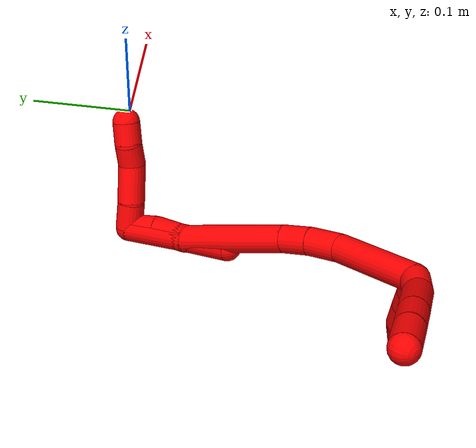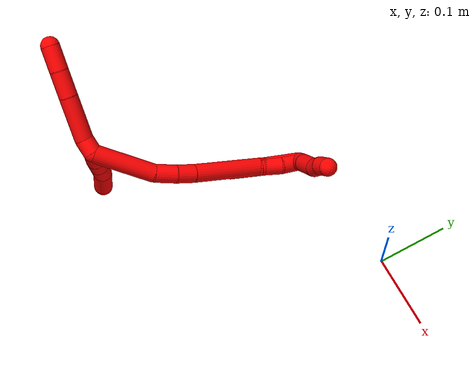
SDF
<sdf version="1.7">
 <world name="default">
  <model name="2">
   <static>0</static>
   <link name="2">
    <collision name="collision-cylinder-e_1_2_8">
     <pose>0.002273 0.00666 0.008038 -0.69193 0.214413 -0.077546</pose>
     <geometry><cylinder><radius>0.0125</radius><length>0.021366</length></cylinder></geometry>
     <surface>
      <friction><ode><mu>1.16</mu><mu2>1.16</mu2><slip1>0</slip1><slip2>0</slip2></ode></friction>
      <contact><ode><kp>1e+06</kp><kd>1</kd><max_vel>0</max_vel><min_depth>0.001</min_depth></ode></contact>
     </surface>
    </collision>
    <visual name="visual-cylinder-e_1_2_8">
     <pose>0.002273 0.00666 0.008038 -0.69193 0.214413 -0.077546</pose>
     <geometry><cylinder><radius>0.0125</radius><length>0.021366</length></cylinder></geometry>
     <material><ambient>1 0 0 1</ambient></material>
    </visual>
    <collision name="collision-cylinder-e_2_8_9">
     <pose>0.020258 0.031255 0.034352 -0.775993 0.550335 -0.229768</pose>
     <geometry><cylinder><radius>0.0125</radius><length>0.060086</length></cylinder></geometry>
     <surface>
      <friction><ode><mu>1.16</mu><mu2>1.16</mu2><slip1>0</slip1><slip2>0</slip2></ode></friction>
      <contact><ode><kp>1e+06</kp><kd>1</kd><max_vel>0</max_vel><min_depth>0.001</min_depth></ode></contact>
     </surface>
    </collision>
    <visual name="visual-cylinder-e_2_8_9">
     <pose>0.020258 0.031255 0.034352 -0.775993 0.550335 -0.229768</pose>
     <geometry><cylinder><radius>0.0125</radius><length>0.060086</length></cylinder></geometry>
     <material><ambient>1 0 0 1</ambient></material>
    </visual>
    <collision name="collision-cylinder-e_3_9_10">
     <pose>0.044089 0.060512 0.063224 -0.818457 0.482402 -0.212575</pose>
     <geometry><cylinder><radius>0.0125</radius><length>0.035006</length></cylinder></geometry>
     <surface>
      <friction><ode><mu>1.16</mu><mu2>1.16</mu2><slip1>0</slip1><slip2>0</slip2></ode></friction>
      <contact><ode><kp>1e+06</kp><kd>1</kd><max_vel>0</max_vel><min_depth>0.001</min_depth></ode></contact>
     </surface>
    </collision>
    <visual name="visual-cylinder-e_3_9_10">
     <pose>0.044089 0.060512 0.063224 -0.818457 0.482402 -0.212575</pose>
     <geometry><cylinder><radius>0.0125</radius><length>0.035006</length></cylinder></geometry>
     <material><ambient>1 0 0 1</ambient></material>
    </visual>
    <collision name="collision-cylinder-e_4_10_6">
     <pose>0.058591 0.083655 0.083858 -0.866839 0.390376 -0.182474</pose>
     <geometry><cylinder><radius>0.0125</radius><length>0.033543</length></cylinder></geometry>
     <surface>
      <friction><ode><mu>1.16</mu><mu2>1.16</mu2><slip1>0</slip1><slip2>0</slip2></ode></friction>
      <contact><ode><kp>1e+06</kp><kd>1</kd><max_vel>0</max_vel><min_depth>0.001</min_depth></ode></contact>
     </surface>
    </collision>
    <visual name="visual-cylinder-e_4_10_6">
     <pose>0.058591 0.083655 0.083858 -0.866839 0.390376 -0.182474</pose>
     <geometry><cylinder><radius>0.0125</radius><length>0.033543</length></cylinder></geometry>
     <material><ambient>1 0 0 1</ambient></material>
    </visual>
    <collision name="collision-cylinder-e_1_2_11">
     <pose>-0.009644 0.000663 -0.003988 -2.97694 -1.17387 2.89475</pose>
     <geometry><cylinder><radius>0.0125</radius><length>0.020913</length></cylinder></geometry>
     <surface>
      <friction><ode><mu>1.16</mu><mu2>1.16</mu2><slip1>0</slip1><slip2>0</slip2></ode></friction>
      <contact><ode><kp>1e+06</kp><kd>1</kd><max_vel>0</max_vel><min_depth>0.001</min_depth></ode></contact>
     </surface>
    </collision>
    <visual name="visual-cylinder-e_1_2_11">
     <pose>-0.009644 0.000663 -0.003988 -2.97694 -1.17387 2.89475</pose>
     <geometry><cylinder><radius>0.0125</radius><length>0.020913</length></cylinder></geometry>
     <material><ambient>1 0 0 1</ambient></material>
    </visual>
    <collision name="collision-cylinder-e_2_11_12">
     <pose>-0.028252 0.002859 -0.012267 -2.79837 -1.10048 2.59088</pose>
     <geometry><cylinder><radius>0.0125</radius><length>0.020113</length></cylinder></geometry>
     <surface>
      <friction><ode><mu>1.16</mu><mu2>1.16</mu2><slip1>0</slip1><slip2>0</slip2></ode></friction>
      <contact><ode><kp>1e+06</kp><kd>1</kd><max_vel>0</max_vel><min_depth>0.001</min_depth></ode></contact>
     </surface>
    </collision>
    <visual name="visual-cylinder-e_2_11_12">
     <pose>-0.028252 0.002859 -0.012267 -2.79837 -1.10048 2.59088</pose>
     <geometry><cylinder><radius>0.0125</radius><length>0.020113</length></cylinder></geometry>
     <material><ambient>1 0 0 1</ambient></material>
    </visual>
    <collision name="collision-cylinder-e_3_12_13">
     <pose>-0.048661 0.006378 -0.021672 -2.77125 -1.12382 2.56325</pose>
     <geometry><cylinder><radius>0.0125</radius><length>0.025383</length></cylinder></geometry>
     <surface>
      <friction><ode><mu>1.16</mu><mu2>1.16</mu2><slip1>0</slip1><slip2>0</slip2></ode></friction>
      <contact><ode><kp>1e+06</kp><kd>1</kd><max_vel>0</max_vel><min_depth>0.001</min_depth></ode></contact>
     </surface>
    </collision>
    <visual name="visual-cylinder-e_3_12_13">
     <pose>-0.048661 0.006378 -0.021672 -2.77125 -1.12382 2.56325</pose>
     <geometry><cylinder><radius>0.0125</radius><length>0.025383</length></cylinder></geometry>
     <material><ambient>1 0 0 1</ambient></material>
    </visual>
    <collision name="collision-cylinder-e_4_13_5">
     <pose>-0.076112 0.007304 -0.031762 2.93176 -1.26305 -2.85563</pose>
     <geometry><cylinder><radius>0.0125</radius><length>0.033591</length></cylinder></geometry>
     <surface>
      <friction><ode><mu>1.16</mu><mu2>1.16</mu2><slip1>0</slip1><slip2>0</slip2></ode></friction>
      <contact><ode><kp>1e+06</kp><kd>1</kd><max_vel>0</max_vel><min_depth>0.001</min_depth></ode></contact>
     </surface>
    </collision>
    <visual name="visual-cylinder-e_4_13_5">
     <pose>-0.076112 0.007304 -0.031762 2.93176 -1.26305 -2.85563</pose>
     <geometry><cylinder><radius>0.0125</radius><length>0.033591</length></cylinder></geometry>
     <material><ambient>1 0 0 1</ambient></material>
    </visual>
    <collision name="collision-cylinder-e_1_2_14">
     <pose>-0.00304 0.000808 -0.042838 -3.12274 -0.070828 2.62159</pose>
     <geometry><cylinder><radius>0.0125</radius><length>0.085906</length></cylinder></geometry>
     <surface>
      <friction><ode><mu>1.16</mu><mu2>1.16</mu2><slip1>0</slip1><slip2>0</slip2></ode></friction>
      <contact><ode><kp>1e+06</kp><kd>1</kd><max_vel>0</max_vel><min_depth>0.001</min_depth></ode></contact>
     </surface>
    </collision>
    <visual name="visual-cylinder-e_1_2_14">
     <pose>-0.00304 0.000808 -0.042838 -3.12274 -0.070828 2.62159</pose>
     <geometry><cylinder><radius>0.0125</radius><length>0.085906</length></cylinder></geometry>
     <material><ambient>1 0 0 1</ambient></material>
    </visual>
    <collision name="collision-cylinder-e_2_14_15">
     <pose>-0.005506 0.005488 -0.100039 -2.87823 0.038529 -0.288912</pose>
     <geometry><cylinder><radius>0.0125</radius><length>0.029775</length></cylinder></geometry>
     <surface>
      <friction><ode><mu>1.16</mu><mu2>1.16</mu2><slip1>0</slip1><slip2>0</slip2></ode></friction>
      <contact><ode><kp>1e+06</kp><kd>1</kd><max_vel>0</max_vel><min_depth>0.001</min_depth></ode></contact>
     </surface>
    </collision>
    <visual name="visual-cylinder-e_2_14_15">
     <pose>-0.005506 0.005488 -0.100039 -2.87823 0.038529 -0.288912</pose>
     <geometry><cylinder><radius>0.0125</radius><length>0.029775</length></cylinder></geometry>
     <material><ambient>1 0 0 1</ambient></material>
    </visual>
    <collision name="collision-cylinder-e_3_15_16">
     <pose>-0.005165 0.013983 -0.126376 -2.77319 -0.018125 0.097207</pose>
     <geometry><cylinder><radius>0.0125</radius><length>0.025675</length></cylinder></geometry>
     <surface>
      <friction><ode><mu>1.16</mu><mu2>1.16</mu2><slip1>0</slip1><slip2>0</slip2></ode></friction>
      <contact><ode><kp>1e+06</kp><kd>1</kd><max_vel>0</max_vel><min_depth>0.001</min_depth></ode></contact>
     </surface>
    </collision>
    <visual name="visual-cylinder-e_3_15_16">
     <pose>-0.005165 0.013983 -0.126376 -2.77319 -0.018125 0.097207</pose>
     <geometry><cylinder><radius>0.0125</radius><length>0.025675</length></cylinder></geometry>
     <material><ambient>1 0 0 1</ambient></material>
    </visual>
    <collision name="collision-cylinder-e_4_16_17">
     <pose>-0.007973 0.040501 -0.183676 -2.69157 -0.051121 0.222472</pose>
     <geometry><cylinder><radius>0.0125</radius><length>0.100806</length></cylinder></geometry>
     <surface>
      <friction><ode><mu>1.16</mu><mu2>1.16</mu2><slip1>0</slip1><slip2>0</slip2></ode></friction>
      <contact><ode><kp>1e+06</kp><kd>1</kd><max_vel>0</max_vel><min_depth>0.001</min_depth></ode></contact>
     </surface>
    </collision>
    <visual name="visual-cylinder-e_4_16_17">
     <pose>-0.007973 0.040501 -0.183676 -2.69157 -0.051121 0.222472</pose>
     <geometry><cylinder><radius>0.0125</radius><length>0.100806</length></cylinder></geometry>
     <material><ambient>1 0 0 1</ambient></material>
    </visual>
    <collision name="collision-cylinder-e_5_17_18">
     <pose>-0.007427 0.066908 -0.243184 -2.83364 0.206765 -1.17853</pose>
     <geometry><cylinder><radius>0.0125</radius><length>0.030412</length></cylinder></geometry>
     <surface>
      <friction><ode><mu>1.16</mu><mu2>1.16</mu2><slip1>0</slip1><slip2>0</slip2></ode></friction>
      <contact><ode><kp>1e+06</kp><kd>1</kd><max_vel>0</max_vel><min_depth>0.001</min_depth></ode></contact>
     </surface>
    </collision>
    <visual name="visual-cylinder-e_5_17_18">
     <pose>-0.007427 0.066908 -0.243184 -2.83364 0.206765 -1.17853</pose>
     <geometry><cylinder><radius>0.0125</radius><length>0.030412</length></cylinder></geometry>
     <material><ambient>1 0 0 1</ambient></material>
    </visual>
    <collision name="collision-cylinder-e_6_18_1">
     <pose>-0.002974 0.077959 -0.269345 -2.64186 0.097239 -0.376811</pose>
     <geometry><cylinder><radius>0.0125</radius><length>0.027426</length></cylinder></geometry>
     <surface>
      <friction><ode><mu>1.16</mu><mu2>1.16</mu2><slip1>0</slip1><slip2>0</slip2></ode></friction>
      <contact><ode><kp>1e+06</kp><kd>1</kd><max_vel>0</max_vel><min_depth>0.001</min_depth></ode></contact>
     </surface>
    </collision>
    <visual name="visual-cylinder-e_6_18_1">
     <pose>-0.002974 0.077959 -0.269345 -2.64186 0.097239 -0.376811</pose>
     <geometry><cylinder><radius>0.0125</radius><length>0.027426</length></cylinder></geometry>
     <material><ambient>1 0 0 1</ambient></material>
    </visual>
    <collision name="collision-cylinder-e_1_1_19">
     <pose>0.008562 0.078213 -0.281743 1.63738 1.01771 1.07538</pose>
     <geometry><cylinder><radius>0.0125</radius><length>0.023987</length></cylinder></geometry>
     <surface>
      <friction><ode><mu>1.16</mu><mu2>1.16</mu2><slip1>0</slip1><slip2>0</slip2></ode></friction>
      <contact><ode><kp>1e+06</kp><kd>1</kd><max_vel>0</max_vel><min_depth>0.001</min_depth></ode></contact>
     </surface>
    </collision>
    <visual name="visual-cylinder-e_1_1_19">
     <pose>0.008562 0.078213 -0.281743 1.63738 1.01771 1.07538</pose>
     <geometry><cylinder><radius>0.0125</radius><length>0.023987</length></cylinder></geometry>
     <material><ambient>1 0 0 1</ambient></material>
    </visual>
    <collision name="collision-cylinder-e_2_19_20">
     <pose>0.033263 0.062035 -0.285152 1.86429 0.951455 1.21325</pose>
     <geometry><cylinder><radius>0.0125</radius><length>0.035603</length></cylinder></geometry>
     <surface>
      <friction><ode><mu>1.16</mu><mu2>1.16</mu2><slip1>0</slip1><slip2>0</slip2></ode></friction>
      <contact><ode><kp>1e+06</kp><kd>1</kd><max_vel>0</max_vel><min_depth>0.001</min_depth></ode></contact>
     </surface>
    </collision>
    <visual name="visual-cylinder-e_2_19_20">
     <pose>0.033263 0.062035 -0.285152 1.86429 0.951455 1.21325</pose>
     <geometry><cylinder><radius>0.0125</radius><length>0.035603</length></cylinder></geometry>
     <material><ambient>1 0 0 1</ambient></material>
    </visual>
    <collision name="collision-cylinder-e_3_20_21">
     <pose>0.057315 0.049258 -0.288902 1.8286 1.26822 1.52422</pose>
     <geometry><cylinder><radius>0.0125</radius><length>0.020025</length></cylinder></geometry>
     <surface>
      <friction><ode><mu>1.16</mu><mu2>1.16</mu2><slip1>0</slip1><slip2>0</slip2></ode></friction>
      <contact><ode><kp>1e+06</kp><kd>1</kd><max_vel>0</max_vel><min_depth>0.001</min_depth></ode></contact>
     </surface>
    </collision>
    <visual name="visual-cylinder-e_3_20_21">
     <pose>0.057315 0.049258 -0.288902 1.8286 1.26822 1.52422</pose>
     <geometry><cylinder><radius>0.0125</radius><length>0.020025</length></cylinder></geometry>
     <material><ambient>1 0 0 1</ambient></material>
    </visual>
    <collision name="collision-cylinder-e_4_21_4">
     <pose>0.075672 0.04172 -0.291859 2.01168 1.04164 1.47113</pose>
     <geometry><cylinder><radius>0.0125</radius><length>0.020385</length></cylinder></geometry>
     <surface>
      <friction><ode><mu>1.16</mu><mu2>1.16</mu2><slip1>0</slip1><slip2>0</slip2></ode></friction>
      <contact><ode><kp>1e+06</kp><kd>1</kd><max_vel>0</max_vel><min_depth>0.001</min_depth></ode></contact>
     </surface>
    </collision>
    <visual name="visual-cylinder-e_4_21_4">
     <pose>0.075672 0.04172 -0.291859 2.01168 1.04164 1.47113</pose>
     <geometry><cylinder><radius>0.0125</radius><length>0.020385</length></cylinder></geometry>
     <material><ambient>1 0 0 1</ambient></material>
    </visual>
    <collision name="collision-cylinder-e_1_1_22">
     <pose>-0.005829 0.073439 -0.255867 0.40987 -0.149681 -0.031167</pose>
     <geometry><cylinder><radius>0.0125</radius><length>0.05614</length></cylinder></geometry>
     <surface>
      <friction><ode><mu>1.16</mu><mu2>1.16</mu2><slip1>0</slip1><slip2>0</slip2></ode></friction>
      <contact><ode><kp>1e+06</kp><kd>1</kd><max_vel>0</max_vel><min_depth>0.001</min_depth></ode></contact>
     </surface>
    </collision>
    <visual name="visual-cylinder-e_1_1_22">
     <pose>-0.005829 0.073439 -0.255867 0.40987 -0.149681 -0.031167</pose>
     <geometry><cylinder><radius>0.0125</radius><length>0.05614</length></cylinder></geometry>
     <material><ambient>1 0 0 1</ambient></material>
    </visual>
    <collision name="collision-cylinder-e_2_22_3">
     <pose>-0.013241 0.054384 -0.210245 0.377421 -0.147639 -0.028246</pose>
     <geometry><cylinder><radius>0.0125</radius><length>0.04386</length></cylinder></geometry>
     <surface>
      <friction><ode><mu>1.16</mu><mu2>1.16</mu2><slip1>0</slip1><slip2>0</slip2></ode></friction>
      <contact><ode><kp>1e+06</kp><kd>1</kd><max_vel>0</max_vel><min_depth>0.001</min_depth></ode></contact>
     </surface>
    </collision>
    <visual name="visual-cylinder-e_2_22_3">
     <pose>-0.013241 0.054384 -0.210245 0.377421 -0.147639 -0.028246</pose>
     <geometry><cylinder><radius>0.0125</radius><length>0.04386</length></cylinder></geometry>
     <material><ambient>1 0 0 1</ambient></material>
    </visual>
    <collision name="collision-sphere-3">
     <pose>-0.016467 0.046391 -0.19008 0 -0 0</pose>
     <geometry><sphere><radius>0.0125</radius></sphere></geometry>
     <surface>
      <friction><ode><mu>1.16</mu><mu2>1.16</mu2><slip1>0</slip1><slip2>0</slip2></ode></friction>
      <contact><ode><kp>1e+06</kp><kd>1</kd><max_vel>0</max_vel><min_depth>0.001</min_depth></ode></contact>
     </surface>
    </collision>
    <visual name="visual-sphere-3">
     <pose>-0.016467 0.046391 -0.19008 0 -0 0</pose>
     <geometry><sphere><radius>0.0125</radius></sphere></geometry>
     <material><ambient>1 0 0 1</ambient></material>
    </visual>
    <collision name="collision-sphere-22">
     <pose>-0.010015 0.062378 -0.230409 0 -0 0</pose>
     <geometry><sphere><radius>0.0125</radius></sphere></geometry>
     <surface>
      <friction><ode><mu>1.16</mu><mu2>1.16</mu2><slip1>0</slip1><slip2>0</slip2></ode></friction>
      <contact><ode><kp>1e+06</kp><kd>1</kd><max_vel>0</max_vel><min_depth>0.001</min_depth></ode></contact>
     </surface>
    </collision>
    <visual name="visual-sphere-22">
     <pose>-0.010015 0.062378 -0.230409 0 -0 0</pose>
     <geometry><sphere><radius>0.0125</radius></sphere></geometry>
     <material><ambient>1 0 0 1</ambient></material>
    </visual>
    <collision name="collision-sphere-4">
     <pose>0.08447 0.037066 -0.294054 0 -0 0</pose>
     <geometry><sphere><radius>0.0125</radius></sphere></geometry>
     <surface>
      <friction><ode><mu>1.16</mu><mu2>1.16</mu2><slip1>0</slip1><slip2>0</slip2></ode></friction>
      <contact><ode><kp>1e+06</kp><kd>1</kd><max_vel>0</max_vel><min_depth>0.001</min_depth></ode></contact>
     </surface>
    </collision>
    <visual name="visual-sphere-4">
     <pose>0.08447 0.037066 -0.294054 0 -0 0</pose>
     <geometry><sphere><radius>0.0125</radius></sphere></geometry>
     <material><ambient>1 0 0 1</ambient></material>
    </visual>
    <collision name="collision-sphere-21">
     <pose>0.066873 0.046373 -0.289663 0 -0 0</pose>
     <geometry><sphere><radius>0.0125</radius></sphere></geometry>
     <surface>
      <friction><ode><mu>1.16</mu><mu2>1.16</mu2><slip1>0</slip1><slip2>0</slip2></ode></friction>
      <contact><ode><kp>1e+06</kp><kd>1</kd><max_vel>0</max_vel><min_depth>0.001</min_depth></ode></contact>
     </surface>
    </collision>
    <visual name="visual-sphere-21">
     <pose>0.066873 0.046373 -0.289663 0 -0 0</pose>
     <geometry><sphere><radius>0.0125</radius></sphere></geometry>
     <material><ambient>1 0 0 1</ambient></material>
    </visual>
    <collision name="collision-sphere-20">
     <pose>0.047758 0.052143 -0.288142 0 -0 0</pose>
     <geometry><sphere><radius>0.0125</radius></sphere></geometry>
     <surface>
      <friction><ode><mu>1.16</mu><mu2>1.16</mu2><slip1>0</slip1><slip2>0</slip2></ode></friction>
      <contact><ode><kp>1e+06</kp><kd>1</kd><max_vel>0</max_vel><min_depth>0.001</min_depth></ode></contact>
     </surface>
    </collision>
    <visual name="visual-sphere-20">
     <pose>0.047758 0.052143 -0.288142 0 -0 0</pose>
     <geometry><sphere><radius>0.0125</radius></sphere></geometry>
     <material><ambient>1 0 0 1</ambient></material>
    </visual>
    <collision name="collision-sphere-11">
     <pose>-0.019287 0.001325 -0.007975 0 -0 0</pose>
     <geometry><sphere><radius>0.0125</radius></sphere></geometry>
     <surface>
      <friction><ode><mu>1.16</mu><mu2>1.16</mu2><slip1>0</slip1><slip2>0</slip2></ode></friction>
      <contact><ode><kp>1e+06</kp><kd>1</kd><max_vel>0</max_vel><min_depth>0.001</min_depth></ode></contact>
     </surface>
    </collision>
    <visual name="visual-sphere-11">
     <pose>-0.019287 0.001325 -0.007975 0 -0 0</pose>
     <geometry><sphere><radius>0.0125</radius></sphere></geometry>
     <material><ambient>1 0 0 1</ambient></material>
    </visual>
    <collision name="collision-sphere-6">
     <pose>0.064973 0.095478 0.093896 0 -0 0</pose>
     <geometry><sphere><radius>0.0125</radius></sphere></geometry>
     <surface>
      <friction><ode><mu>1.16</mu><mu2>1.16</mu2><slip1>0</slip1><slip2>0</slip2></ode></friction>
      <contact><ode><kp>1e+06</kp><kd>1</kd><max_vel>0</max_vel><min_depth>0.001</min_depth></ode></contact>
     </surface>
    </collision>
    <visual name="visual-sphere-6">
     <pose>0.064973 0.095478 0.093896 0 -0 0</pose>
     <geometry><sphere><radius>0.0125</radius></sphere></geometry>
     <material><ambient>1 0 0 1</ambient></material>
    </visual>
    <collision name="collision-sphere-10">
     <pose>0.052209 0.071832 0.073819 0 -0 0</pose>
     <geometry><sphere><radius>0.0125</radius></sphere></geometry>
     <surface>
      <friction><ode><mu>1.16</mu><mu2>1.16</mu2><slip1>0</slip1><slip2>0</slip2></ode></friction>
      <contact><ode><kp>1e+06</kp><kd>1</kd><max_vel>0</max_vel><min_depth>0.001</min_depth></ode></contact>
     </surface>
    </collision>
    <visual name="visual-sphere-10">
     <pose>0.052209 0.071832 0.073819 0 -0 0</pose>
     <geometry><sphere><radius>0.0125</radius></sphere></geometry>
     <material><ambient>1 0 0 1</ambient></material>
    </visual>
    <collision name="collision-sphere-9">
     <pose>0.035969 0.049191 0.052628 0 -0 0</pose>
     <geometry><sphere><radius>0.0125</radius></sphere></geometry>
     <surface>
      <friction><ode><mu>1.16</mu><mu2>1.16</mu2><slip1>0</slip1><slip2>0</slip2></ode></friction>
      <contact><ode><kp>1e+06</kp><kd>1</kd><max_vel>0</max_vel><min_depth>0.001</min_depth></ode></contact>
     </surface>
    </collision>
    <visual name="visual-sphere-9">
     <pose>0.035969 0.049191 0.052628 0 -0 0</pose>
     <geometry><sphere><radius>0.0125</radius></sphere></geometry>
     <material><ambient>1 0 0 1</ambient></material>
    </visual>
    <collision name="collision-sphere-2">
     <geometry><sphere><radius>0.0125</radius></sphere></geometry>
     <surface>
      <friction><ode><mu>1.16</mu><mu2>1.16</mu2><slip1>0</slip1><slip2>0</slip2></ode></friction>
      <contact><ode><kp>1e+06</kp><kd>1</kd><max_vel>0</max_vel><min_depth>0.001</min_depth></ode></contact>
     </surface>
    </collision>
    <visual name="visual-sphere-2">
     <geometry><sphere><radius>0.0125</radius></sphere></geometry>
     <material><ambient>1 0 0 1</ambient></material>
    </visual>
    <collision name="collision-sphere-19">
     <pose>0.018768 0.071926 -0.282162 0 -0 0</pose>
     <geometry><sphere><radius>0.0125</radius></sphere></geometry>
     <surface>
      <friction><ode><mu>1.16</mu><mu2>1.16</mu2><slip1>0</slip1><slip2>0</slip2></ode></friction>
      <contact><ode><kp>1e+06</kp><kd>1</kd><max_vel>0</max_vel><min_depth>0.001</min_depth></ode></contact>
     </surface>
    </collision>
    <visual name="visual-sphere-19">
     <pose>0.018768 0.071926 -0.282162 0 -0 0</pose>
     <geometry><sphere><radius>0.0125</radius></sphere></geometry>
     <material><ambient>1 0 0 1</ambient></material>
    </visual>
    <collision name="collision-sphere-8">
     <pose>0.004546 0.01332 0.016075 0 -0 0</pose>
     <geometry><sphere><radius>0.0125</radius></sphere></geometry>
     <surface>
      <friction><ode><mu>1.16</mu><mu2>1.16</mu2><slip1>0</slip1><slip2>0</slip2></ode></friction>
      <contact><ode><kp>1e+06</kp><kd>1</kd><max_vel>0</max_vel><min_depth>0.001</min_depth></ode></contact>
     </surface>
    </collision>
    <visual name="visual-sphere-8">
     <pose>0.004546 0.01332 0.016075 0 -0 0</pose>
     <geometry><sphere><radius>0.0125</radius></sphere></geometry>
     <material><ambient>1 0 0 1</ambient></material>
    </visual>
    <collision name="collision-sphere-12">
     <pose>-0.037216 0.004392 -0.016558 0 -0 0</pose>
     <geometry><sphere><radius>0.0125</radius></sphere></geometry>
     <surface>
      <friction><ode><mu>1.16</mu><mu2>1.16</mu2><slip1>0</slip1><slip2>0</slip2></ode></friction>
      <contact><ode><kp>1e+06</kp><kd>1</kd><max_vel>0</max_vel><min_depth>0.001</min_depth></ode></contact>
     </surface>
    </collision>
    <visual name="visual-sphere-12">
     <pose>-0.037216 0.004392 -0.016558 0 -0 0</pose>
     <geometry><sphere><radius>0.0125</radius></sphere></geometry>
     <material><ambient>1 0 0 1</ambient></material>
    </visual>
    <collision name="collision-sphere-13">
     <pose>-0.060106 0.008363 -0.026786 0 -0 0</pose>
     <geometry><sphere><radius>0.0125</radius></sphere></geometry>
     <surface>
      <friction><ode><mu>1.16</mu><mu2>1.16</mu2><slip1>0</slip1><slip2>0</slip2></ode></friction>
      <contact><ode><kp>1e+06</kp><kd>1</kd><max_vel>0</max_vel><min_depth>0.001</min_depth></ode></contact>
     </surface>
    </collision>
    <visual name="visual-sphere-13">
     <pose>-0.060106 0.008363 -0.026786 0 -0 0</pose>
     <geometry><sphere><radius>0.0125</radius></sphere></geometry>
     <material><ambient>1 0 0 1</ambient></material>
    </visual>
    <collision name="collision-sphere-5">
     <pose>-0.092118 0.006244 -0.036738 0 -0 0</pose>
     <geometry><sphere><radius>0.0125</radius></sphere></geometry>
     <surface>
      <friction><ode><mu>1.16</mu><mu2>1.16</mu2><slip1>0</slip1><slip2>0</slip2></ode></friction>
      <contact><ode><kp>1e+06</kp><kd>1</kd><max_vel>0</max_vel><min_depth>0.001</min_depth></ode></contact>
     </surface>
    </collision>
    <visual name="visual-sphere-5">
     <pose>-0.092118 0.006244 -0.036738 0 -0 0</pose>
     <geometry><sphere><radius>0.0125</radius></sphere></geometry>
     <material><ambient>1 0 0 1</ambient></material>
    </visual>
    <collision name="collision-sphere-14">
     <pose>-0.006079 0.001615 -0.085675 0 -0 0</pose>
     <geometry><sphere><radius>0.0125</radius></sphere></geometry>
     <surface>
      <friction><ode><mu>1.16</mu><mu2>1.16</mu2><slip1>0</slip1><slip2>0</slip2></ode></friction>
      <contact><ode><kp>1e+06</kp><kd>1</kd><max_vel>0</max_vel><min_depth>0.001</min_depth></ode></contact>
     </surface>
    </collision>
    <visual name="visual-sphere-14">
     <pose>-0.006079 0.001615 -0.085675 0 -0 0</pose>
     <geometry><sphere><radius>0.0125</radius></sphere></geometry>
     <material><ambient>1 0 0 1</ambient></material>
    </visual>
    <collision name="collision-sphere-15">
     <pose>-0.004933 0.00936 -0.114402 0 -0 0</pose>
     <geometry><sphere><radius>0.0125</radius></sphere></geometry>
     <surface>
      <friction><ode><mu>1.16</mu><mu2>1.16</mu2><slip1>0</slip1><slip2>0</slip2></ode></friction>
      <contact><ode><kp>1e+06</kp><kd>1</kd><max_vel>0</max_vel><min_depth>0.001</min_depth></ode></contact>
     </surface>
    </collision>
    <visual name="visual-sphere-15">
     <pose>-0.004933 0.00936 -0.114402 0 -0 0</pose>
     <geometry><sphere><radius>0.0125</radius></sphere></geometry>
     <material><ambient>1 0 0 1</ambient></material>
    </visual>
    <collision name="collision-sphere-16">
     <pose>-0.005398 0.018605 -0.138351 0 -0 0</pose>
     <geometry><sphere><radius>0.0125</radius></sphere></geometry>
     <surface>
      <friction><ode><mu>1.16</mu><mu2>1.16</mu2><slip1>0</slip1><slip2>0</slip2></ode></friction>
      <contact><ode><kp>1e+06</kp><kd>1</kd><max_vel>0</max_vel><min_depth>0.001</min_depth></ode></contact>
     </surface>
    </collision>
    <visual name="visual-sphere-16">
     <pose>-0.005398 0.018605 -0.138351 0 -0 0</pose>
     <geometry><sphere><radius>0.0125</radius></sphere></geometry>
     <material><ambient>1 0 0 1</ambient></material>
    </visual>
    <collision name="collision-sphere-17">
     <pose>-0.010549 0.062398 -0.229002 0 -0 0</pose>
     <geometry><sphere><radius>0.0125</radius></sphere></geometry>
     <surface>
      <friction><ode><mu>1.16</mu><mu2>1.16</mu2><slip1>0</slip1><slip2>0</slip2></ode></friction>
      <contact><ode><kp>1e+06</kp><kd>1</kd><max_vel>0</max_vel><min_depth>0.001</min_depth></ode></contact>
     </surface>
    </collision>
    <visual name="visual-sphere-17">
     <pose>-0.010549 0.062398 -0.229002 0 -0 0</pose>
     <geometry><sphere><radius>0.0125</radius></sphere></geometry>
     <material><ambient>1 0 0 1</ambient></material>
    </visual>
    <collision name="collision-sphere-18">
     <pose>-0.004306 0.071419 -0.257366 0 -0 0</pose>
     <geometry><sphere><radius>0.0125</radius></sphere></geometry>
     <surface>
      <friction><ode><mu>1.16</mu><mu2>1.16</mu2><slip1>0</slip1><slip2>0</slip2></ode></friction>
      <contact><ode><kp>1e+06</kp><kd>1</kd><max_vel>0</max_vel><min_depth>0.001</min_depth></ode></contact>
     </surface>
    </collision>
    <visual name="visual-sphere-18">
     <pose>-0.004306 0.071419 -0.257366 0 -0 0</pose>
     <geometry><sphere><radius>0.0125</radius></sphere></geometry>
     <material><ambient>1 0 0 1</ambient></material>
    </visual>
    <collision name="collision-sphere-1">
     <pose>-0.001643 0.084499 -0.281324 0 -0 0</pose>
     <geometry><sphere><radius>0.0125</radius></sphere></geometry>
     <surface>
      <friction><ode><mu>1.16</mu><mu2>1.16</mu2><slip1>0</slip1><slip2>0</slip2></ode></friction>
      <contact><ode><kp>1e+06</kp><kd>1</kd><max_vel>0</max_vel><min_depth>0.001</min_depth></ode></contact>
     </surface>
    </collision>
    <visual name="visual-sphere-1">
     <pose>-0.001643 0.084499 -0.281324 0 -0 0</pose>
     <geometry><sphere><radius>0.0125</radius></sphere></geometry>
     <material><ambient>1 0 0 1</ambient></material>
    </visual>
    <inertial>
     <pose>0.002288 0.038267 -0.120157 0 -0 0</pose>
     <mass>0.75</mass>
     <inertia>
      <ixx>0.000144</ixx>
      <ixy>0</ixy>
      <ixz>0</ixz>
      <iyy>7.6e-05</iyy>
      <iyz>0</iyz>
      <izz>-6.4e-05</izz>
     </inertia>
    </inertial>
   </link>
   <pose>-0.277976 -0.285562 0.13518 -0.34778 -1.20829 1.24408</pose>
  </model>
 </world>
</sdf>
